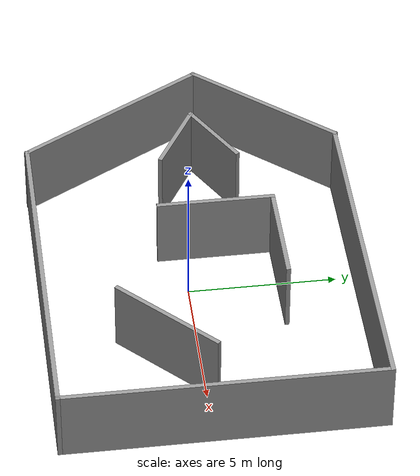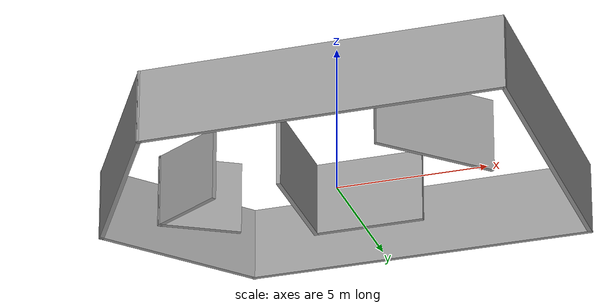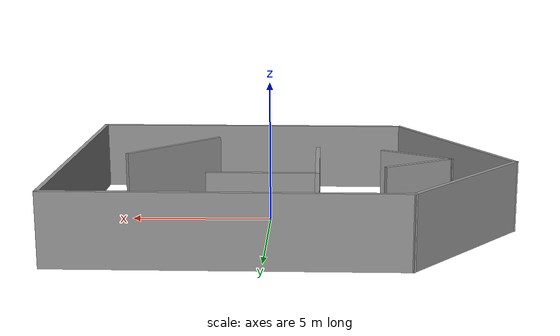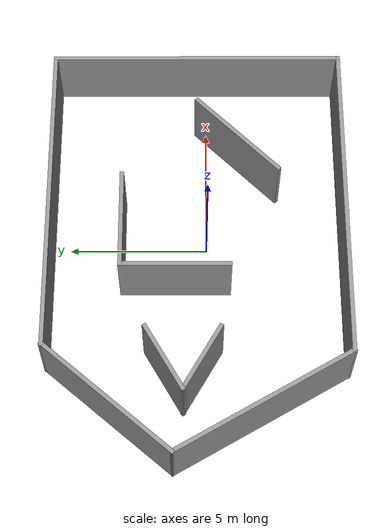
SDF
<?xml version='1.0'?>
<sdf version='1.7'>
  <model name='test_map'>
    <pose>-0.810601 0.351967 0 0 -0 0</pose>
    <link name='Wall_0'>
      <collision name='Wall_0_Collision'>
        <geometry>
          <box>
            <size>4 0.15 2.5</size>
          </box>
        </geometry>
        <pose>0 0 1.25 0 -0 0</pose>
      </collision>
      <visual name='Wall_0_Visual'>
        <pose>0 0 1.25 0 -0 0</pose>
        <geometry>
          <box>
            <size>4 0.15 2.5</size>
          </box>
        </geometry>
        <material>
          <script>
            <uri>file://media/materials/scripts/gazebo.material</uri>
            <name>Gazebo/Grey</name>
          </script>
          <ambient>1 1 1 1</ambient>
        </material>
        <meta>
          <layer>0</layer>
        </meta>
      </visual>
      <pose>-0.8894 0.783033 0 0 -0 1.5708</pose>
    </link>
    <link name='Wall_1'>
      <collision name='Wall_1_Collision'>
        <geometry>
          <box>
            <size>3.75 0.15 2.5</size>
          </box>
        </geometry>
        <pose>0 0 1.25 0 -0 0</pose>
      </collision>
      <visual name='Wall_1_Visual'>
        <pose>0 0 1.25 0 -0 0</pose>
        <geometry>
          <box>
            <size>3.75 0.15 2.5</size>
          </box>
        </geometry>
        <material>
          <script>
            <uri>file://media/materials/scripts/gazebo.material</uri>
            <name>Gazebo/Grey</name>
          </script>
          <ambient>1 1 1 1</ambient>
        </material>
        <meta>
          <layer>0</layer>
        </meta>
      </visual>
      <pose>0.910601 2.70803 0 0 -0 0</pose>
    </link>
    <link name='Wall_11'>
      <collision name='Wall_11_Collision'>
        <geometry>
          <box>
            <size>2.75 0.15 2.5</size>
          </box>
        </geometry>
        <pose>0 0 1.25 0 -0 0</pose>
      </collision>
      <visual name='Wall_11_Visual'>
        <pose>0 0 1.25 0 -0 0</pose>
        <geometry>
          <box>
            <size>2.75 0.15 2.5</size>
          </box>
        </geometry>
        <material>
          <script>
            <uri>file://media/materials/scripts/gazebo.material</uri>
            <name>Gazebo/Grey</name>
          </script>
          <ambient>1 1 1 1</ambient>
        </material>
        <meta>
          <layer>0</layer>
        </meta>
      </visual>
      <pose>-4.37907 -0.152585 0 0 -0 -0.523599</pose>
    </link>
    <link name='Wall_13'>
      <collision name='Wall_13_Collision'>
        <geometry>
          <box>
            <size>2.75 0.15 2.5</size>
          </box>
        </geometry>
        <pose>0 0 1.25 0 -0 0</pose>
      </collision>
      <visual name='Wall_13_Visual'>
        <pose>0 0 1.25 0 -0 0</pose>
        <geometry>
          <box>
            <size>2.75 0.15 2.5</size>
          </box>
        </geometry>
        <material>
          <script>
            <uri>file://media/materials/scripts/gazebo.material</uri>
            <name>Gazebo/Grey</name>
          </script>
          <ambient>1 1 1 1</ambient>
        </material>
        <meta>
          <layer>0</layer>
        </meta>
      </visual>
      <pose>-4.37907 1.14742 0 0 -0 0.523599</pose>
    </link>
    <link name='Wall_3'>
      <collision name='Wall_3_Collision'>
        <geometry>
          <box>
            <size>11.75 0.15 2.5</size>
          </box>
        </geometry>
        <pose>0 0 1.25 0 -0 0</pose>
      </collision>
      <visual name='Wall_3_Visual'>
        <pose>0 0 1.25 0 -0 0</pose>
        <geometry>
          <box>
            <size>11.75 0.15 2.5</size>
          </box>
        </geometry>
        <material>
          <script>
            <uri>file://media/materials/scripts/gazebo.material</uri>
            <name>Gazebo/Grey</name>
          </script>
          <ambient>1 1 1 1</ambient>
        </material>
        <meta>
          <layer>0</layer>
        </meta>
      </visual>
      <pose>1.91537 5.29836 0 0 -0 0</pose>
    </link>
    <link name='Wall_4'>
      <collision name='Wall_4_Collision'>
        <geometry>
          <box>
            <size>10.75 0.15 2.5</size>
          </box>
        </geometry>
        <pose>0 0 1.25 0 -0 0</pose>
      </collision>
      <visual name='Wall_4_Visual'>
        <pose>0 0 1.25 0 -0 0</pose>
        <geometry>
          <box>
            <size>10.75 0.15 2.5</size>
          </box>
        </geometry>
        <material>
          <script>
            <uri>file://media/materials/scripts/gazebo.material</uri>
            <name>Gazebo/Grey</name>
          </script>
          <ambient>1 1 1 1</ambient>
        </material>
        <meta>
          <layer>0</layer>
        </meta>
      </visual>
      <pose>7.71537 -0.001643 0 0 -0 -1.5708</pose>
    </link>
    <link name='Wall_5'>
      <collision name='Wall_5_Collision'>
        <geometry>
          <box>
            <size>12 0.15 2.5</size>
          </box>
        </geometry>
        <pose>0 0 1.25 0 -0 0</pose>
      </collision>
      <visual name='Wall_5_Visual'>
        <pose>0 0 1.25 0 -0 0</pose>
        <geometry>
          <box>
            <size>12 0.15 2.5</size>
          </box>
        </geometry>
        <material>
          <script>
            <uri>file://media/materials/scripts/gazebo.material</uri>
            <name>Gazebo/Grey</name>
          </script>
          <ambient>1 1 1 1</ambient>
        </material>
        <meta>
          <layer>0</layer>
        </meta>
      </visual>
      <pose>1.79037 -5.30164 0 0 -0 3.14159</pose>
    </link>
    <link name='Wall_6'>
      <collision name='Wall_6_Collision'>
        <geometry>
          <box>
            <size>7.25 0.15 2.5</size>
          </box>
        </geometry>
        <pose>0 0 1.25 0 -0 0</pose>
      </collision>
      <visual name='Wall_6_Visual'>
        <pose>0 0 1.25 0 -0 0</pose>
        <geometry>
          <box>
            <size>7.25 0.15 2.5</size>
          </box>
        </geometry>
        <material>
          <script>
            <uri>file://media/materials/scripts/gazebo.material</uri>
            <name>Gazebo/Grey</name>
          </script>
          <ambient>1 1 1 1</ambient>
        </material>
        <meta>
          <layer>0</layer>
        </meta>
      </visual>
      <pose>-5.90963 -2.22725 0 0 -0 2.0944</pose>
    </link>
    <link name='Wall_7'>
      <collision name='Wall_7_Collision'>
        <geometry>
          <box>
            <size>6.00264 0.15 2.5</size>
          </box>
        </geometry>
        <pose>0 0 1.25 0 -0 0</pose>
      </collision>
      <visual name='Wall_7_Visual'>
        <pose>0 0 1.25 0 -0 0</pose>
        <geometry>
          <box>
            <size>6.00264 0.15 2.5</size>
          </box>
        </geometry>
        <material>
          <script>
            <uri>file://media/materials/scripts/gazebo.material</uri>
            <name>Gazebo/Grey</name>
          </script>
          <ambient>1 1 1 1</ambient>
        </material>
        <meta>
          <layer>0</layer>
        </meta>
      </visual>
      <pose>-5.78463 3.07275 0 0 -0 0.864159</pose>
    </link>
    <link name='Wall_9'>
      <collision name='Wall_9_Collision'>
        <geometry>
          <box>
            <size>4.25 0.15 2.5</size>
          </box>
        </geometry>
        <pose>0 0 1.25 0 -0 0</pose>
      </collision>
      <visual name='Wall_9_Visual'>
        <pose>0 0 1.25 0 -0 0</pose>
        <geometry>
          <box>
            <size>4.25 0.15 2.5</size>
          </box>
        </geometry>
        <material>
          <script>
            <uri>file://media/materials/scripts/gazebo.material</uri>
            <name>Gazebo/Grey</name>
          </script>
          <ambient>1 1 1 1</ambient>
        </material>
        <meta>
          <layer>0</layer>
        </meta>
      </visual>
      <pose>4.39806 -1.47718 0 0 -0 0.785398</pose>
    </link>
    <static>1</static>
  </model>
</sdf>
